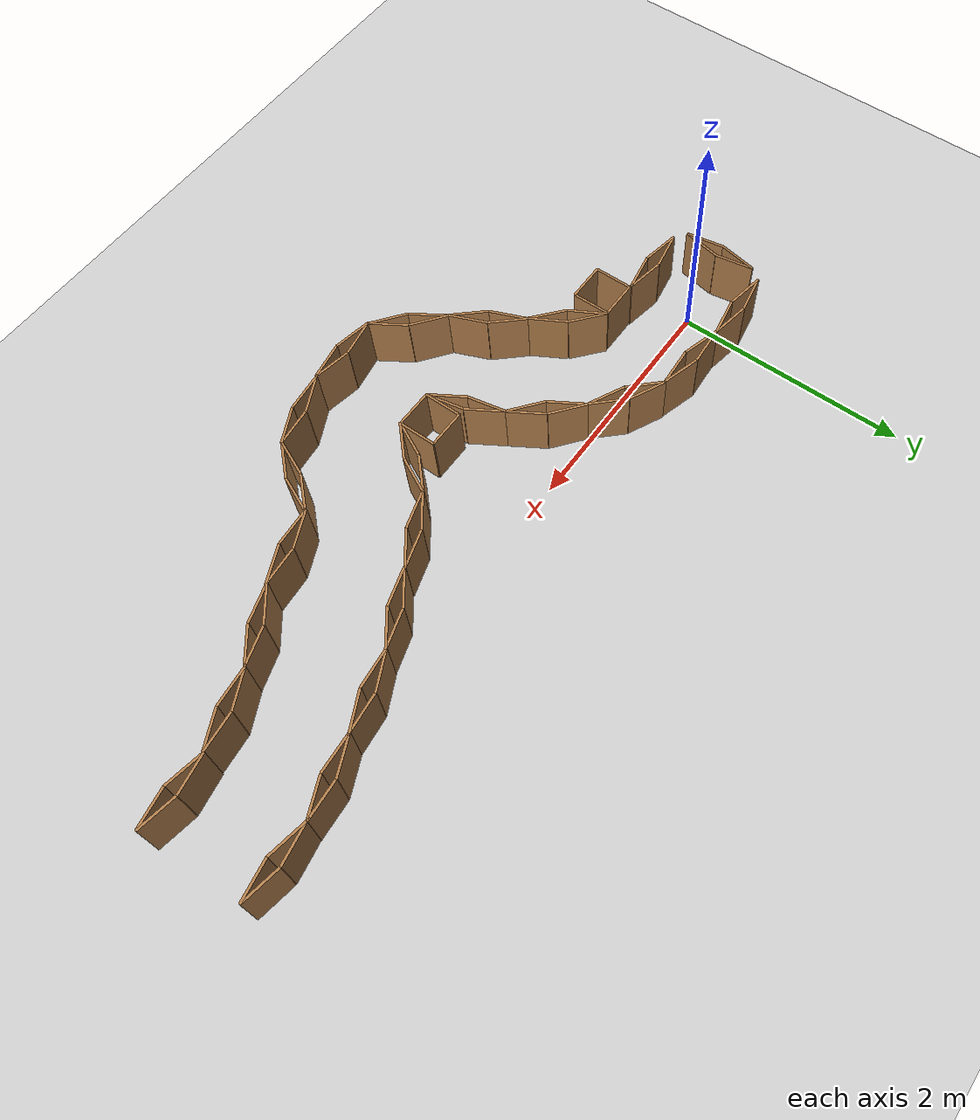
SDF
<sdf version="1.6">
 <world name="default">
  <model name="ground_plane">
   <static>1</static>
   <link name="link">
    <collision name="collision">
     <geometry><plane><normal>0 0 1</normal><size>100 100</size></plane></geometry>
     <surface>
      <contact><collide_bitmask>65535</collide_bitmask></contact>
      <friction><ode><mu>100</mu><mu2>50</mu2></ode></friction>
     </surface>
    </collision>
    <visual name="visual">
     <cast_shadows>0</cast_shadows>
     <geometry><plane><normal>0 0 1</normal><size>100 100</size></plane></geometry>
     <material>
      <script><uri>file://media/materials/scripts/gazebo.material</uri><name>Gazebo/Grey</name></script>
     </material>
    </visual>
   </link>
  </model>
  <light name="sun" type="directional">
   <pose>0 0 10 0 -0 0</pose>
   <diffuse>0.8 0.8 0.8 1</diffuse>
   <specular>0.2 0.2 0.2 1</specular>
   <attenuation>
    <range>1000</range>
    <constant>0.9</constant>
    <linear>0.01</linear>
    <quadratic>0.001</quadratic>
   </attenuation>
   <direction>-0.5 0.1 -0.9</direction>
  </light>
  <model name="folded_box">
   <pose>5.45079 0.30944 0 0 -0 0</pose>
   <static>1</static>
   <link name="box1">
    <pose>0.16 -0.028218 0.25 0 -0 0.174533</pose>
    <collision name="collision"><geometry><box><size>0.325 0.05 0.5</size></box></geometry></collision>
    <visual name="visual">
     <geometry><box><size>0.325 0.02 0.5</size></box></geometry>
     <material>
      <script><uri>file://media/materials/scripts/gazebo.material</uri><name>Gazebo/WoodPallet</name></script>
     </material>
    </visual>
   </link>
   <link name="box2">
    <pose>0.16 0.028218 0.25 0 0 -0.174533</pose>
    <collision name="collision"><geometry><box><size>0.325 0.05 0.5</size></box></geometry></collision>
    <visual name="visual">
     <geometry><box><size>0.325 0.02 0.5</size></box></geometry>
     <material>
      <script><uri>file://media/materials/scripts/gazebo.material</uri><name>Gazebo/WoodPallet</name></script>
     </material>
    </visual>
   </link>
   <link name="box3">
    <pose>-0.16 0.028218 0.25 0 -0 0.174533</pose>
    <collision name="collision"><geometry><box><size>0.325 0.05 0.5</size></box></geometry></collision>
    <visual name="visual">
     <geometry><box><size>0.325 0.02 0.5</size></box></geometry>
     <material>
      <script><uri>file://media/materials/scripts/gazebo.material</uri><name>Gazebo/WoodPallet</name></script>
     </material>
    </visual>
   </link>
   <link name="box4">
    <pose>-0.16 -0.028218 0.25 0 0 -0.174533</pose>
    <collision name="collision"><geometry><box><size>0.325 0.05 0.5</size></box></geometry></collision>
    <visual name="visual">
     <geometry><box><size>0.325 0.02 0.5</size></box></geometry>
     <material>
      <script><uri>file://media/materials/scripts/gazebo.material</uri><name>Gazebo/WoodPallet</name></script>
     </material>
    </visual>
   </link>
  </model>
  <gravity>0 0 -9.8</gravity>
  <magnetic_field>6e-06 2.3e-05 -4.2e-05</magnetic_field>
  <atmosphere type="adiabatic"/>
  <physics name="default_physics" default="0" type="ode">
   <max_step_size>0.001</max_step_size>
   <real_time_factor>1</real_time_factor>
   <real_time_update_rate>1000</real_time_update_rate>
  </physics>
  <scene><ambient>0.4 0.4 0.4 1</ambient><background>0.7 0.7 0.7 1</background><shadows>1</shadows></scene>
  <audio><device>default</device></audio>
  <spherical_coordinates>
   <surface_model>EARTH_WGS84</surface_model>
   <latitude_deg>0</latitude_deg>
   <longitude_deg>0</longitude_deg>
   <elevation>0</elevation>
   <heading_deg>0</heading_deg>
  </spherical_coordinates>
  <model name="folded_box_clone">
   <static>1</static>
   <link name="box1">
    <pose>0.16 -0.028218 0.25 0 -0 0.174533</pose>
    <collision name="collision"><geometry><box><size>0.325 0.05 0.5</size></box></geometry></collision>
    <visual name="visual">
     <geometry><box><size>0.325 0.02 0.5</size></box></geometry>
     <material>
      <script><uri>file://media/materials/scripts/gazebo.material</uri><name>Gazebo/WoodPallet</name></script>
     </material>
    </visual>
   </link>
   <link name="box2">
    <pose>0.16 0.028218 0.25 0 0 -0.174533</pose>
    <collision name="collision"><geometry><box><size>0.325 0.05 0.5</size></box></geometry></collision>
    <visual name="visual">
     <geometry><box><size>0.325 0.02 0.5</size></box></geometry>
     <material>
      <script><uri>file://media/materials/scripts/gazebo.material</uri><name>Gazebo/WoodPallet</name></script>
     </material>
    </visual>
   </link>
   <link name="box3">
    <pose>-0.16 0.028218 0.25 0 -0 0.174533</pose>
    <collision name="collision"><geometry><box><size>0.325 0.05 0.5</size></box></geometry></collision>
    <visual name="visual">
     <geometry><box><size>0.325 0.02 0.5</size></box></geometry>
     <material>
      <script><uri>file://media/materials/scripts/gazebo.material</uri><name>Gazebo/WoodPallet</name></script>
     </material>
    </visual>
   </link>
   <link name="box4">
    <pose>-0.16 -0.028218 0.25 0 0 -0.174533</pose>
    <collision name="collision"><geometry><box><size>0.325 0.05 0.5</size></box></geometry></collision>
    <visual name="visual">
     <geometry><box><size>0.325 0.02 0.5</size></box></geometry>
     <material>
      <script><uri>file://media/materials/scripts/gazebo.material</uri><name>Gazebo/WoodPallet</name></script>
     </material>
    </visual>
   </link>
   <pose>5.49332 -0.554141 0 0 -0 0</pose>
  </model>
  <model name="folded_box_clone_clone">
   <static>1</static>
   <link name="box1">
    <pose>0.16 -0.028218 0.25 0 -0 0.174533</pose>
    <collision name="collision"><geometry><box><size>0.325 0.05 0.5</size></box></geometry></collision>
    <visual name="visual">
     <geometry><box><size>0.325 0.02 0.5</size></box></geometry>
     <material>
      <script><uri>file://media/materials/scripts/gazebo.material</uri><name>Gazebo/WoodPallet</name></script>
     </material>
    </visual>
   </link>
   <link name="box2">
    <pose>0.16 0.028218 0.25 0 0 -0.174533</pose>
    <collision name="collision"><geometry><box><size>0.325 0.05 0.5</size></box></geometry></collision>
    <visual name="visual">
     <geometry><box><size>0.325 0.02 0.5</size></box></geometry>
     <material>
      <script><uri>file://media/materials/scripts/gazebo.material</uri><name>Gazebo/WoodPallet</name></script>
     </material>
    </visual>
   </link>
   <link name="box3">
    <pose>-0.16 0.028218 0.25 0 -0 0.174533</pose>
    <collision name="collision"><geometry><box><size>0.325 0.05 0.5</size></box></geometry></collision>
    <visual name="visual">
     <geometry><box><size>0.325 0.02 0.5</size></box></geometry>
     <material>
      <script><uri>file://media/materials/scripts/gazebo.material</uri><name>Gazebo/WoodPallet</name></script>
     </material>
    </visual>
   </link>
   <link name="box4">
    <pose>-0.16 -0.028218 0.25 0 0 -0.174533</pose>
    <collision name="collision"><geometry><box><size>0.325 0.05 0.5</size></box></geometry></collision>
    <visual name="visual">
     <geometry><box><size>0.325 0.02 0.5</size></box></geometry>
     <material>
      <script><uri>file://media/materials/scripts/gazebo.material</uri><name>Gazebo/WoodPallet</name></script>
     </material>
    </visual>
   </link>
   <pose>4.87332 -0.650379 0 0 -0 0.285681</pose>
  </model>
  <model name="folded_box_clone_clone_clone">
   <static>1</static>
   <link name="box1">
    <pose>0.16 -0.028218 0.25 0 -0 0.174533</pose>
    <collision name="collision"><geometry><box><size>0.325 0.05 0.5</size></box></geometry></collision>
    <visual name="visual">
     <geometry><box><size>0.325 0.02 0.5</size></box></geometry>
     <material>
      <script><uri>file://media/materials/scripts/gazebo.material</uri><name>Gazebo/WoodPallet</name></script>
     </material>
    </visual>
   </link>
   <link name="box2">
    <pose>0.16 0.028218 0.25 0 0 -0.174533</pose>
    <collision name="collision"><geometry><box><size>0.325 0.05 0.5</size></box></geometry></collision>
    <visual name="visual">
     <geometry><box><size>0.325 0.02 0.5</size></box></geometry>
     <material>
      <script><uri>file://media/materials/scripts/gazebo.material</uri><name>Gazebo/WoodPallet</name></script>
     </material>
    </visual>
   </link>
   <link name="box3">
    <pose>-0.16 0.028218 0.25 0 -0 0.174533</pose>
    <collision name="collision"><geometry><box><size>0.325 0.05 0.5</size></box></geometry></collision>
    <visual name="visual">
     <geometry><box><size>0.325 0.02 0.5</size></box></geometry>
     <material>
      <script><uri>file://media/materials/scripts/gazebo.material</uri><name>Gazebo/WoodPallet</name></script>
     </material>
    </visual>
   </link>
   <link name="box4">
    <pose>-0.16 -0.028218 0.25 0 0 -0.174533</pose>
    <collision name="collision"><geometry><box><size>0.325 0.05 0.5</size></box></geometry></collision>
    <visual name="visual">
     <geometry><box><size>0.325 0.02 0.5</size></box></geometry>
     <material>
      <script><uri>file://media/materials/scripts/gazebo.material</uri><name>Gazebo/WoodPallet</name></script>
     </material>
    </visual>
   </link>
   <pose>4.82198 0.232018 0 0 -0 0.250838</pose>
  </model>
  <model name="folded_box_clone_clone_clone_0">
   <static>1</static>
   <link name="box1">
    <pose>0.16 -0.028218 0.25 0 -0 0.174533</pose>
    <collision name="collision"><geometry><box><size>0.325 0.05 0.5</size></box></geometry></collision>
    <visual name="visual">
     <geometry><box><size>0.325 0.02 0.5</size></box></geometry>
     <material>
      <script><uri>file://media/materials/scripts/gazebo.material</uri><name>Gazebo/WoodPallet</name></script>
     </material>
    </visual>
   </link>
   <link name="box2">
    <pose>0.16 0.028218 0.25 0 0 -0.174533</pose>
    <collision name="collision"><geometry><box><size>0.325 0.05 0.5</size></box></geometry></collision>
    <visual name="visual">
     <geometry><box><size>0.325 0.02 0.5</size></box></geometry>
     <material>
      <script><uri>file://media/materials/scripts/gazebo.material</uri><name>Gazebo/WoodPallet</name></script>
     </material>
    </visual>
   </link>
   <link name="box3">
    <pose>-0.16 0.028218 0.25 0 -0 0.174533</pose>
    <collision name="collision"><geometry><box><size>0.325 0.05 0.5</size></box></geometry></collision>
    <visual name="visual">
     <geometry><box><size>0.325 0.02 0.5</size></box></geometry>
     <material>
      <script><uri>file://media/materials/scripts/gazebo.material</uri><name>Gazebo/WoodPallet</name></script>
     </material>
    </visual>
   </link>
   <link name="box4">
    <pose>-0.16 -0.028218 0.25 0 0 -0.174533</pose>
    <collision name="collision"><geometry><box><size>0.325 0.05 0.5</size></box></geometry></collision>
    <visual name="visual">
     <geometry><box><size>0.325 0.02 0.5</size></box></geometry>
     <material>
      <script><uri>file://media/materials/scripts/gazebo.material</uri><name>Gazebo/WoodPallet</name></script>
     </material>
    </visual>
   </link>
   <pose>4.28612 -0.892423 0 0 -0 0.486291</pose>
  </model>
  <model name="folded_box_clone_clone_clone_0_clone">
   <static>1</static>
   <link name="box1">
    <pose>0.16 -0.028218 0.25 0 -0 0.174533</pose>
    <collision name="collision"><geometry><box><size>0.325 0.05 0.5</size></box></geometry></collision>
    <visual name="visual">
     <geometry><box><size>0.325 0.02 0.5</size></box></geometry>
     <material>
      <script><uri>file://media/materials/scripts/gazebo.material</uri><name>Gazebo/WoodPallet</name></script>
     </material>
    </visual>
   </link>
   <link name="box2">
    <pose>0.16 0.028218 0.25 0 0 -0.174533</pose>
    <collision name="collision"><geometry><box><size>0.325 0.05 0.5</size></box></geometry></collision>
    <visual name="visual">
     <geometry><box><size>0.325 0.02 0.5</size></box></geometry>
     <material>
      <script><uri>file://media/materials/scripts/gazebo.material</uri><name>Gazebo/WoodPallet</name></script>
     </material>
    </visual>
   </link>
   <link name="box3">
    <pose>-0.16 0.028218 0.25 0 -0 0.174533</pose>
    <collision name="collision"><geometry><box><size>0.325 0.05 0.5</size></box></geometry></collision>
    <visual name="visual">
     <geometry><box><size>0.325 0.02 0.5</size></box></geometry>
     <material>
      <script><uri>file://media/materials/scripts/gazebo.material</uri><name>Gazebo/WoodPallet</name></script>
     </material>
    </visual>
   </link>
   <link name="box4">
    <pose>-0.16 -0.028218 0.25 0 0 -0.174533</pose>
    <collision name="collision"><geometry><box><size>0.325 0.05 0.5</size></box></geometry></collision>
    <visual name="visual">
     <geometry><box><size>0.325 0.02 0.5</size></box></geometry>
     <material>
      <script><uri>file://media/materials/scripts/gazebo.material</uri><name>Gazebo/WoodPallet</name></script>
     </material>
    </visual>
   </link>
   <pose>3.69958 -1.1258 0 0 -0 0.255467</pose>
  </model>
  <model name="folded_box_clone_clone_clone_0_clone_clone">
   <static>1</static>
   <link name="box1">
    <pose>0.16 -0.028218 0.25 0 -0 0.174533</pose>
    <collision name="collision"><geometry><box><size>0.325 0.05 0.5</size></box></geometry></collision>
    <visual name="visual">
     <geometry><box><size>0.325 0.02 0.5</size></box></geometry>
     <material>
      <script><uri>file://media/materials/scripts/gazebo.material</uri><name>Gazebo/WoodPallet</name></script>
     </material>
    </visual>
   </link>
   <link name="box2">
    <pose>0.16 0.028218 0.25 0 0 -0.174533</pose>
    <collision name="collision"><geometry><box><size>0.325 0.05 0.5</size></box></geometry></collision>
    <visual name="visual">
     <geometry><box><size>0.325 0.02 0.5</size></box></geometry>
     <material>
      <script><uri>file://media/materials/scripts/gazebo.material</uri><name>Gazebo/WoodPallet</name></script>
     </material>
    </visual>
   </link>
   <link name="box3">
    <pose>-0.16 0.028218 0.25 0 -0 0.174533</pose>
    <collision name="collision"><geometry><box><size>0.325 0.05 0.5</size></box></geometry></collision>
    <visual name="visual">
     <geometry><box><size>0.325 0.02 0.5</size></box></geometry>
     <material>
      <script><uri>file://media/materials/scripts/gazebo.material</uri><name>Gazebo/WoodPallet</name></script>
     </material>
    </visual>
   </link>
   <link name="box4">
    <pose>-0.16 -0.028218 0.25 0 0 -0.174533</pose>
    <collision name="collision"><geometry><box><size>0.325 0.05 0.5</size></box></geometry></collision>
    <visual name="visual">
     <geometry><box><size>0.325 0.02 0.5</size></box></geometry>
     <material>
      <script><uri>file://media/materials/scripts/gazebo.material</uri><name>Gazebo/WoodPallet</name></script>
     </material>
    </visual>
   </link>
   <pose>3.22629 -1.47177 0 0 -0 0.995873</pose>
  </model>
  <model name="folded_box_clone_clone_clone_clone">
   <static>1</static>
   <link name="box1">
    <pose>0.16 -0.028218 0.25 0 -0 0.174533</pose>
    <collision name="collision"><geometry><box><size>0.325 0.05 0.5</size></box></geometry></collision>
    <visual name="visual">
     <geometry><box><size>0.325 0.02 0.5</size></box></geometry>
     <material>
      <script><uri>file://media/materials/scripts/gazebo.material</uri><name>Gazebo/WoodPallet</name></script>
     </material>
    </visual>
   </link>
   <link name="box2">
    <pose>0.16 0.028218 0.25 0 0 -0.174533</pose>
    <collision name="collision"><geometry><box><size>0.325 0.05 0.5</size></box></geometry></collision>
    <visual name="visual">
     <geometry><box><size>0.325 0.02 0.5</size></box></geometry>
     <material>
      <script><uri>file://media/materials/scripts/gazebo.material</uri><name>Gazebo/WoodPallet</name></script>
     </material>
    </visual>
   </link>
   <link name="box3">
    <pose>-0.16 0.028218 0.25 0 -0 0.174533</pose>
    <collision name="collision"><geometry><box><size>0.325 0.05 0.5</size></box></geometry></collision>
    <visual name="visual">
     <geometry><box><size>0.325 0.02 0.5</size></box></geometry>
     <material>
      <script><uri>file://media/materials/scripts/gazebo.material</uri><name>Gazebo/WoodPallet</name></script>
     </material>
    </visual>
   </link>
   <link name="box4">
    <pose>-0.16 -0.028218 0.25 0 0 -0.174533</pose>
    <collision name="collision"><geometry><box><size>0.325 0.05 0.5</size></box></geometry></collision>
    <visual name="visual">
     <geometry><box><size>0.325 0.02 0.5</size></box></geometry>
     <material>
      <script><uri>file://media/materials/scripts/gazebo.material</uri><name>Gazebo/WoodPallet</name></script>
     </material>
    </visual>
   </link>
   <pose>4.21063 0.063018 0 0 -0 0.285681</pose>
  </model>
  <model name="folded_box_clone_clone_clone_clone_clone">
   <static>1</static>
   <link name="box1">
    <pose>0.16 -0.028218 0.25 0 -0 0.174533</pose>
    <collision name="collision"><geometry><box><size>0.325 0.05 0.5</size></box></geometry></collision>
    <visual name="visual">
     <geometry><box><size>0.325 0.02 0.5</size></box></geometry>
     <material>
      <script><uri>file://media/materials/scripts/gazebo.material</uri><name>Gazebo/WoodPallet</name></script>
     </material>
    </visual>
   </link>
   <link name="box2">
    <pose>0.16 0.028218 0.25 0 0 -0.174533</pose>
    <collision name="collision"><geometry><box><size>0.325 0.05 0.5</size></box></geometry></collision>
    <visual name="visual">
     <geometry><box><size>0.325 0.02 0.5</size></box></geometry>
     <material>
      <script><uri>file://media/materials/scripts/gazebo.material</uri><name>Gazebo/WoodPallet</name></script>
     </material>
    </visual>
   </link>
   <link name="box3">
    <pose>-0.16 0.028218 0.25 0 -0 0.174533</pose>
    <collision name="collision"><geometry><box><size>0.325 0.05 0.5</size></box></geometry></collision>
    <visual name="visual">
     <geometry><box><size>0.325 0.02 0.5</size></box></geometry>
     <material>
      <script><uri>file://media/materials/scripts/gazebo.material</uri><name>Gazebo/WoodPallet</name></script>
     </material>
    </visual>
   </link>
   <link name="box4">
    <pose>-0.16 -0.028218 0.25 0 0 -0.174533</pose>
    <collision name="collision"><geometry><box><size>0.325 0.05 0.5</size></box></geometry></collision>
    <visual name="visual">
     <geometry><box><size>0.325 0.02 0.5</size></box></geometry>
     <material>
      <script><uri>file://media/materials/scripts/gazebo.material</uri><name>Gazebo/WoodPallet</name></script>
     </material>
    </visual>
   </link>
   <pose>3.62126 -0.174426 0 0 -0 0.470834</pose>
  </model>
  <model name="folded_box_clone_clone_clone_clone_clone_clone">
   <static>1</static>
   <link name="box1">
    <pose>0.16 -0.028218 0.25 0 -0 0.174533</pose>
    <collision name="collision"><geometry><box><size>0.325 0.05 0.5</size></box></geometry></collision>
    <visual name="visual">
     <geometry><box><size>0.325 0.02 0.5</size></box></geometry>
     <material>
      <script><uri>file://media/materials/scripts/gazebo.material</uri><name>Gazebo/WoodPallet</name></script>
     </material>
    </visual>
   </link>
   <link name="box2">
    <pose>0.16 0.028218 0.25 0 0 -0.174533</pose>
    <collision name="collision"><geometry><box><size>0.325 0.05 0.5</size></box></geometry></collision>
    <visual name="visual">
     <geometry><box><size>0.325 0.02 0.5</size></box></geometry>
     <material>
      <script><uri>file://media/materials/scripts/gazebo.material</uri><name>Gazebo/WoodPallet</name></script>
     </material>
    </visual>
   </link>
   <link name="box3">
    <pose>-0.16 0.028218 0.25 0 -0 0.174533</pose>
    <collision name="collision"><geometry><box><size>0.325 0.05 0.5</size></box></geometry></collision>
    <visual name="visual">
     <geometry><box><size>0.325 0.02 0.5</size></box></geometry>
     <material>
      <script><uri>file://media/materials/scripts/gazebo.material</uri><name>Gazebo/WoodPallet</name></script>
     </material>
    </visual>
   </link>
   <link name="box4">
    <pose>-0.16 -0.028218 0.25 0 0 -0.174533</pose>
    <collision name="collision"><geometry><box><size>0.325 0.05 0.5</size></box></geometry></collision>
    <visual name="visual">
     <geometry><box><size>0.325 0.02 0.5</size></box></geometry>
     <material>
      <script><uri>file://media/materials/scripts/gazebo.material</uri><name>Gazebo/WoodPallet</name></script>
     </material>
    </visual>
   </link>
   <pose>3.05639 -0.456316 0 0 -0 0.470834</pose>
  </model>
  <model name="folded_box_clone_clone_clone_clone_clone_clone_clone">
   <static>1</static>
   <link name="box1">
    <pose>0.16 -0.028218 0.25 0 -0 0.174533</pose>
    <collision name="collision"><geometry><box><size>0.325 0.05 0.5</size></box></geometry></collision>
    <visual name="visual">
     <geometry><box><size>0.325 0.02 0.5</size></box></geometry>
     <material>
      <script><uri>file://media/materials/scripts/gazebo.material</uri><name>Gazebo/WoodPallet</name></script>
     </material>
    </visual>
   </link>
   <link name="box2">
    <pose>0.16 0.028218 0.25 0 0 -0.174533</pose>
    <collision name="collision"><geometry><box><size>0.325 0.05 0.5</size></box></geometry></collision>
    <visual name="visual">
     <geometry><box><size>0.325 0.02 0.5</size></box></geometry>
     <material>
      <script><uri>file://media/materials/scripts/gazebo.material</uri><name>Gazebo/WoodPallet</name></script>
     </material>
    </visual>
   </link>
   <link name="box3">
    <pose>-0.16 0.028218 0.25 0 -0 0.174533</pose>
    <collision name="collision"><geometry><box><size>0.325 0.05 0.5</size></box></geometry></collision>
    <visual name="visual">
     <geometry><box><size>0.325 0.02 0.5</size></box></geometry>
     <material>
      <script><uri>file://media/materials/scripts/gazebo.material</uri><name>Gazebo/WoodPallet</name></script>
     </material>
    </visual>
   </link>
   <link name="box4">
    <pose>-0.16 -0.028218 0.25 0 0 -0.174533</pose>
    <collision name="collision"><geometry><box><size>0.325 0.05 0.5</size></box></geometry></collision>
    <visual name="visual">
     <geometry><box><size>0.325 0.02 0.5</size></box></geometry>
     <material>
      <script><uri>file://media/materials/scripts/gazebo.material</uri><name>Gazebo/WoodPallet</name></script>
     </material>
    </visual>
   </link>
   <pose>2.58689 -0.855627 0 0 -0 0.946587</pose>
  </model>
  <model name="folded_box_clone_clone_clone_0_clone_clone_clone">
   <static>1</static>
   <link name="box1">
    <pose>0.16 -0.028218 0.25 0 -0 0.174533</pose>
    <collision name="collision"><geometry><box><size>0.325 0.05 0.5</size></box></geometry></collision>
    <visual name="visual">
     <geometry><box><size>0.325 0.02 0.5</size></box></geometry>
     <material>
      <script><uri>file://media/materials/scripts/gazebo.material</uri><name>Gazebo/WoodPallet</name></script>
     </material>
    </visual>
   </link>
   <link name="box2">
    <pose>0.16 0.028218 0.25 0 0 -0.174533</pose>
    <collision name="collision"><geometry><box><size>0.325 0.05 0.5</size></box></geometry></collision>
    <visual name="visual">
     <geometry><box><size>0.325 0.02 0.5</size></box></geometry>
     <material>
      <script><uri>file://media/materials/scripts/gazebo.material</uri><name>Gazebo/WoodPallet</name></script>
     </material>
    </visual>
   </link>
   <link name="box3">
    <pose>-0.16 0.028218 0.25 0 -0 0.174533</pose>
    <collision name="collision"><geometry><box><size>0.325 0.05 0.5</size></box></geometry></collision>
    <visual name="visual">
     <geometry><box><size>0.325 0.02 0.5</size></box></geometry>
     <material>
      <script><uri>file://media/materials/scripts/gazebo.material</uri><name>Gazebo/WoodPallet</name></script>
     </material>
    </visual>
   </link>
   <link name="box4">
    <pose>-0.16 -0.028218 0.25 0 0 -0.174533</pose>
    <collision name="collision"><geometry><box><size>0.325 0.05 0.5</size></box></geometry></collision>
    <visual name="visual">
     <geometry><box><size>0.325 0.02 0.5</size></box></geometry>
     <material>
      <script><uri>file://media/materials/scripts/gazebo.material</uri><name>Gazebo/WoodPallet</name></script>
     </material>
    </visual>
   </link>
   <pose>2.75282 -1.82725 0 0 -0 0.284525</pose>
  </model>
  <model name="folded_box_2">
   <pose>2.24175 -0.948723 0 0 -0 0</pose>
   <static>1</static>
   <link name="box1">
    <pose>0 0.16 0.25 0 -0 0</pose>
    <collision name="collision"><geometry><box><size>0.325 0.05 0.5</size></box></geometry></collision>
    <visual name="visual">
     <geometry><box><size>0.325 0.02 0.5</size></box></geometry>
     <material>
      <script><uri>file://media/materials/scripts/gazebo.material</uri><name>Gazebo/WoodPallet</name></script>
     </material>
    </visual>
   </link>
   <link name="box2">
    <pose>0 -0.16 0.25 0 -0 0</pose>
    <collision name="collision"><geometry><box><size>0.325 0.05 0.5</size></box></geometry></collision>
    <visual name="visual">
     <geometry><box><size>0.325 0.02 0.5</size></box></geometry>
     <material>
      <script><uri>file://media/materials/scripts/gazebo.material</uri><name>Gazebo/WoodPallet</name></script>
     </material>
    </visual>
   </link>
   <link name="box3">
    <pose>0.16 0 0.25 0 -0 1.5708</pose>
    <collision name="collision"><geometry><box><size>0.325 0.05 0.5</size></box></geometry></collision>
    <visual name="visual">
     <geometry><box><size>0.325 0.02 0.5</size></box></geometry>
     <material>
      <script><uri>file://media/materials/scripts/gazebo.material</uri><name>Gazebo/WoodPallet</name></script>
     </material>
    </visual>
   </link>
   <link name="box4">
    <pose>-0.16 0 0.25 0 -0 1.5708</pose>
    <collision name="collision"><geometry><box><size>0.325 0.05 0.5</size></box></geometry></collision>
    <visual name="visual">
     <geometry><box><size>0.325 0.02 0.5</size></box></geometry>
     <material>
      <script><uri>file://media/materials/scripts/gazebo.material</uri><name>Gazebo/WoodPallet</name></script>
     </material>
    </visual>
   </link>
  </model>
  <model name="folded_box_clone_clone_clone_0_clone_clone_clone_clone">
   <static>1</static>
   <link name="box1">
    <pose>0.16 -0.028218 0.25 0 -0 0.174533</pose>
    <collision name="collision"><geometry><box><size>0.325 0.05 0.5</size></box></geometry></collision>
    <visual name="visual">
     <geometry><box><size>0.325 0.02 0.5</size></box></geometry>
     <material>
      <script><uri>file://media/materials/scripts/gazebo.material</uri><name>Gazebo/WoodPallet</name></script>
     </material>
    </visual>
   </link>
   <link name="box2">
    <pose>0.16 0.028218 0.25 0 0 -0.174533</pose>
    <collision name="collision"><geometry><box><size>0.325 0.05 0.5</size></box></geometry></collision>
    <visual name="visual">
     <geometry><box><size>0.325 0.02 0.5</size></box></geometry>
     <material>
      <script><uri>file://media/materials/scripts/gazebo.material</uri><name>Gazebo/WoodPallet</name></script>
     </material>
    </visual>
   </link>
   <link name="box3">
    <pose>-0.16 0.028218 0.25 0 -0 0.174533</pose>
    <collision name="collision"><geometry><box><size>0.325 0.05 0.5</size></box></geometry></collision>
    <visual name="visual">
     <geometry><box><size>0.325 0.02 0.5</size></box></geometry>
     <material>
      <script><uri>file://media/materials/scripts/gazebo.material</uri><name>Gazebo/WoodPallet</name></script>
     </material>
    </visual>
   </link>
   <link name="box4">
    <pose>-0.16 -0.028218 0.25 0 0 -0.174533</pose>
    <collision name="collision"><geometry><box><size>0.325 0.05 0.5</size></box></geometry></collision>
    <visual name="visual">
     <geometry><box><size>0.325 0.02 0.5</size></box></geometry>
     <material>
      <script><uri>file://media/materials/scripts/gazebo.material</uri><name>Gazebo/WoodPallet</name></script>
     </material>
    </visual>
   </link>
   <pose>2.12703 -1.92144 0 0 0 -0.006556</pose>
  </model>
  <model name="folded_box_clone_clone_clone_0_clone_clone_clone_clone_clone">
   <static>1</static>
   <link name="box1">
    <pose>0.16 -0.028218 0.25 0 -0 0.174533</pose>
    <collision name="collision"><geometry><box><size>0.325 0.05 0.5</size></box></geometry></collision>
    <visual name="visual">
     <geometry><box><size>0.325 0.02 0.5</size></box></geometry>
     <material>
      <script><uri>file://media/materials/scripts/gazebo.material</uri><name>Gazebo/WoodPallet</name></script>
     </material>
    </visual>
   </link>
   <link name="box2">
    <pose>0.16 0.028218 0.25 0 0 -0.174533</pose>
    <collision name="collision"><geometry><box><size>0.325 0.05 0.5</size></box></geometry></collision>
    <visual name="visual">
     <geometry><box><size>0.325 0.02 0.5</size></box></geometry>
     <material>
      <script><uri>file://media/materials/scripts/gazebo.material</uri><name>Gazebo/WoodPallet</name></script>
     </material>
    </visual>
   </link>
   <link name="box3">
    <pose>-0.16 0.028218 0.25 0 -0 0.174533</pose>
    <collision name="collision"><geometry><box><size>0.325 0.05 0.5</size></box></geometry></collision>
    <visual name="visual">
     <geometry><box><size>0.325 0.02 0.5</size></box></geometry>
     <material>
      <script><uri>file://media/materials/scripts/gazebo.material</uri><name>Gazebo/WoodPallet</name></script>
     </material>
    </visual>
   </link>
   <link name="box4">
    <pose>-0.16 -0.028218 0.25 0 0 -0.174533</pose>
    <collision name="collision"><geometry><box><size>0.325 0.05 0.5</size></box></geometry></collision>
    <visual name="visual">
     <geometry><box><size>0.325 0.02 0.5</size></box></geometry>
     <material>
      <script><uri>file://media/materials/scripts/gazebo.material</uri><name>Gazebo/WoodPallet</name></script>
     </material>
    </visual>
   </link>
   <pose>1.59835 -1.6768 0 0 0 -0.836745</pose>
  </model>
  <model name="folded_box_clone_clone_clone_clone_clone_clone_clone_clone">
   <static>1</static>
   <link name="box1">
    <pose>0.16 -0.028218 0.25 0 -0 0.174533</pose>
    <collision name="collision"><geometry><box><size>0.325 0.05 0.5</size></box></geometry></collision>
    <visual name="visual">
     <geometry><box><size>0.325 0.02 0.5</size></box></geometry>
     <material>
      <script><uri>file://media/materials/scripts/gazebo.material</uri><name>Gazebo/WoodPallet</name></script>
     </material>
    </visual>
   </link>
   <link name="box2">
    <pose>0.16 0.028218 0.25 0 0 -0.174533</pose>
    <collision name="collision"><geometry><box><size>0.325 0.05 0.5</size></box></geometry></collision>
    <visual name="visual">
     <geometry><box><size>0.325 0.02 0.5</size></box></geometry>
     <material>
      <script><uri>file://media/materials/scripts/gazebo.material</uri><name>Gazebo/WoodPallet</name></script>
     </material>
    </visual>
   </link>
   <link name="box3">
    <pose>-0.16 0.028218 0.25 0 -0 0.174533</pose>
    <collision name="collision"><geometry><box><size>0.325 0.05 0.5</size></box></geometry></collision>
    <visual name="visual">
     <geometry><box><size>0.325 0.02 0.5</size></box></geometry>
     <material>
      <script><uri>file://media/materials/scripts/gazebo.material</uri><name>Gazebo/WoodPallet</name></script>
     </material>
    </visual>
   </link>
   <link name="box4">
    <pose>-0.16 -0.028218 0.25 0 0 -0.174533</pose>
    <collision name="collision"><geometry><box><size>0.325 0.05 0.5</size></box></geometry></collision>
    <visual name="visual">
     <geometry><box><size>0.325 0.02 0.5</size></box></geometry>
     <material>
      <script><uri>file://media/materials/scripts/gazebo.material</uri><name>Gazebo/WoodPallet</name></script>
     </material>
    </visual>
   </link>
   <pose>1.96803 -0.815349 0 0 -0 1.93858</pose>
  </model>
  <model name="folded_box_clone_clone_clone_0_clone_clone_clone_clone_clone_clone">
   <static>1</static>
   <link name="box1">
    <pose>0.16 -0.028218 0.25 0 -0 0.174533</pose>
    <collision name="collision"><geometry><box><size>0.325 0.05 0.5</size></box></geometry></collision>
    <visual name="visual">
     <geometry><box><size>0.325 0.02 0.5</size></box></geometry>
     <material>
      <script><uri>file://media/materials/scripts/gazebo.material</uri><name>Gazebo/WoodPallet</name></script>
     </material>
    </visual>
   </link>
   <link name="box2">
    <pose>0.16 0.028218 0.25 0 0 -0.174533</pose>
    <collision name="collision"><geometry><box><size>0.325 0.05 0.5</size></box></geometry></collision>
    <visual name="visual">
     <geometry><box><size>0.325 0.02 0.5</size></box></geometry>
     <material>
      <script><uri>file://media/materials/scripts/gazebo.material</uri><name>Gazebo/WoodPallet</name></script>
     </material>
    </visual>
   </link>
   <link name="box3">
    <pose>-0.16 0.028218 0.25 0 -0 0.174533</pose>
    <collision name="collision"><geometry><box><size>0.325 0.05 0.5</size></box></geometry></collision>
    <visual name="visual">
     <geometry><box><size>0.325 0.02 0.5</size></box></geometry>
     <material>
      <script><uri>file://media/materials/scripts/gazebo.material</uri><name>Gazebo/WoodPallet</name></script>
     </material>
    </visual>
   </link>
   <link name="box4">
    <pose>-0.16 -0.028218 0.25 0 0 -0.174533</pose>
    <collision name="collision"><geometry><box><size>0.325 0.05 0.5</size></box></geometry></collision>
    <visual name="visual">
     <geometry><box><size>0.325 0.02 0.5</size></box></geometry>
     <material>
      <script><uri>file://media/materials/scripts/gazebo.material</uri><name>Gazebo/WoodPallet</name></script>
     </material>
    </visual>
   </link>
   <pose>1.20983 -1.16753 0 0 0 -1.0126</pose>
  </model>
  <model name="folded_box_clone_clone_clone_0_clone_clone_clone_clone_clone_clone_clone">
   <static>1</static>
   <link name="box1">
    <pose>0.16 -0.028218 0.25 0 -0 0.174533</pose>
    <collision name="collision"><geometry><box><size>0.325 0.05 0.5</size></box></geometry></collision>
    <visual name="visual">
     <geometry><box><size>0.325 0.02 0.5</size></box></geometry>
     <material>
      <script><uri>file://media/materials/scripts/gazebo.material</uri><name>Gazebo/WoodPallet</name></script>
     </material>
    </visual>
   </link>
   <link name="box2">
    <pose>0.16 0.028218 0.25 0 0 -0.174533</pose>
    <collision name="collision"><geometry><box><size>0.325 0.05 0.5</size></box></geometry></collision>
    <visual name="visual">
     <geometry><box><size>0.325 0.02 0.5</size></box></geometry>
     <material>
      <script><uri>file://media/materials/scripts/gazebo.material</uri><name>Gazebo/WoodPallet</name></script>
     </material>
    </visual>
   </link>
   <link name="box3">
    <pose>-0.16 0.028218 0.25 0 -0 0.174533</pose>
    <collision name="collision"><geometry><box><size>0.325 0.05 0.5</size></box></geometry></collision>
    <visual name="visual">
     <geometry><box><size>0.325 0.02 0.5</size></box></geometry>
     <material>
      <script><uri>file://media/materials/scripts/gazebo.material</uri><name>Gazebo/WoodPallet</name></script>
     </material>
    </visual>
   </link>
   <link name="box4">
    <pose>-0.16 -0.028218 0.25 0 0 -0.174533</pose>
    <collision name="collision"><geometry><box><size>0.325 0.05 0.5</size></box></geometry></collision>
    <visual name="visual">
     <geometry><box><size>0.325 0.02 0.5</size></box></geometry>
     <material>
      <script><uri>file://media/materials/scripts/gazebo.material</uri><name>Gazebo/WoodPallet</name></script>
     </material>
    </visual>
   </link>
   <pose>0.835848 -0.6496 0 0 0 -0.88994</pose>
  </model>
  <model name="folded_box_clone_clone_clone_clone_clone_clone_clone_clone_clone">
   <static>1</static>
   <link name="box1">
    <pose>0.16 -0.028218 0.25 0 -0 0.174533</pose>
    <collision name="collision"><geometry><box><size>0.325 0.05 0.5</size></box></geometry></collision>
    <visual name="visual">
     <geometry><box><size>0.325 0.02 0.5</size></box></geometry>
     <material>
      <script><uri>file://media/materials/scripts/gazebo.material</uri><name>Gazebo/WoodPallet</name></script>
     </material>
    </visual>
   </link>
   <link name="box2">
    <pose>0.16 0.028218 0.25 0 0 -0.174533</pose>
    <collision name="collision"><geometry><box><size>0.325 0.05 0.5</size></box></geometry></collision>
    <visual name="visual">
     <geometry><box><size>0.325 0.02 0.5</size></box></geometry>
     <material>
      <script><uri>file://media/materials/scripts/gazebo.material</uri><name>Gazebo/WoodPallet</name></script>
     </material>
    </visual>
   </link>
   <link name="box3">
    <pose>-0.16 0.028218 0.25 0 -0 0.174533</pose>
    <collision name="collision"><geometry><box><size>0.325 0.05 0.5</size></box></geometry></collision>
    <visual name="visual">
     <geometry><box><size>0.325 0.02 0.5</size></box></geometry>
     <material>
      <script><uri>file://media/materials/scripts/gazebo.material</uri><name>Gazebo/WoodPallet</name></script>
     </material>
    </visual>
   </link>
   <link name="box4">
    <pose>-0.16 -0.028218 0.25 0 0 -0.174533</pose>
    <collision name="collision"><geometry><box><size>0.325 0.05 0.5</size></box></geometry></collision>
    <visual name="visual">
     <geometry><box><size>0.325 0.02 0.5</size></box></geometry>
     <material>
      <script><uri>file://media/materials/scripts/gazebo.material</uri><name>Gazebo/WoodPallet</name></script>
     </material>
    </visual>
   </link>
   <pose>1.6449 -0.2761 0 0 -0 2.28459</pose>
  </model>
  <model name="folded_box_2_clone">
   <pose>0.466314 -0.564093 0 0 -0 0</pose>
   <static>1</static>
   <link name="box1">
    <pose>0 0.16 0.25 0 -0 0</pose>
    <collision name="collision"><geometry><box><size>0.325 0.05 0.5</size></box></geometry></collision>
    <visual name="visual">
     <geometry><box><size>0.325 0.02 0.5</size></box></geometry>
     <material>
      <script><uri>file://media/materials/scripts/gazebo.material</uri><name>Gazebo/WoodPallet</name></script>
     </material>
    </visual>
   </link>
   <link name="box2">
    <pose>0 -0.16 0.25 0 -0 0</pose>
    <collision name="collision"><geometry><box><size>0.325 0.05 0.5</size></box></geometry></collision>
    <visual name="visual">
     <geometry><box><size>0.325 0.02 0.5</size></box></geometry>
     <material>
      <script><uri>file://media/materials/scripts/gazebo.material</uri><name>Gazebo/WoodPallet</name></script>
     </material>
    </visual>
   </link>
   <link name="box3">
    <pose>0.16 0 0.25 0 -0 1.5708</pose>
    <collision name="collision"><geometry><box><size>0.325 0.05 0.5</size></box></geometry></collision>
    <visual name="visual">
     <geometry><box><size>0.325 0.02 0.5</size></box></geometry>
     <material>
      <script><uri>file://media/materials/scripts/gazebo.material</uri><name>Gazebo/WoodPallet</name></script>
     </material>
    </visual>
   </link>
   <link name="box4">
    <pose>-0.16 0 0.25 0 -0 1.5708</pose>
    <collision name="collision"><geometry><box><size>0.325 0.05 0.5</size></box></geometry></collision>
    <visual name="visual">
     <geometry><box><size>0.325 0.02 0.5</size></box></geometry>
     <material>
      <script><uri>file://media/materials/scripts/gazebo.material</uri><name>Gazebo/WoodPallet</name></script>
     </material>
    </visual>
   </link>
  </model>
  <model name="folded_box_clone_clone_clone_clone_clone_clone_clone_clone_clone_clone">
   <static>1</static>
   <link name="box1">
    <pose>0.16 -0.028218 0.25 0 -0 0.174533</pose>
    <collision name="collision"><geometry><box><size>0.325 0.05 0.5</size></box></geometry></collision>
    <visual name="visual">
     <geometry><box><size>0.325 0.02 0.5</size></box></geometry>
     <material>
      <script><uri>file://media/materials/scripts/gazebo.material</uri><name>Gazebo/WoodPallet</name></script>
     </material>
    </visual>
   </link>
   <link name="box2">
    <pose>0.16 0.028218 0.25 0 0 -0.174533</pose>
    <collision name="collision"><geometry><box><size>0.325 0.05 0.5</size></box></geometry></collision>
    <visual name="visual">
     <geometry><box><size>0.325 0.02 0.5</size></box></geometry>
     <material>
      <script><uri>file://media/materials/scripts/gazebo.material</uri><name>Gazebo/WoodPallet</name></script>
     </material>
    </visual>
   </link>
   <link name="box3">
    <pose>-0.16 0.028218 0.25 0 -0 0.174533</pose>
    <collision name="collision"><geometry><box><size>0.325 0.05 0.5</size></box></geometry></collision>
    <visual name="visual">
     <geometry><box><size>0.325 0.02 0.5</size></box></geometry>
     <material>
      <script><uri>file://media/materials/scripts/gazebo.material</uri><name>Gazebo/WoodPallet</name></script>
     </material>
    </visual>
   </link>
   <link name="box4">
    <pose>-0.16 -0.028218 0.25 0 0 -0.174533</pose>
    <collision name="collision"><geometry><box><size>0.325 0.05 0.5</size></box></geometry></collision>
    <visual name="visual">
     <geometry><box><size>0.325 0.02 0.5</size></box></geometry>
     <material>
      <script><uri>file://media/materials/scripts/gazebo.material</uri><name>Gazebo/WoodPallet</name></script>
     </material>
    </visual>
   </link>
   <pose>1.17587 0.15477 0 0 -0 2.50707</pose>
  </model>
  <model name="folded_box_clone_clone_clone_clone_clone_clone_clone_clone_clone_clone_clone">
   <static>1</static>
   <link name="box1">
    <pose>0.16 -0.028218 0.25 0 -0 0.174533</pose>
    <collision name="collision"><geometry><box><size>0.325 0.05 0.5</size></box></geometry></collision>
    <visual name="visual">
     <geometry><box><size>0.325 0.02 0.5</size></box></geometry>
     <material>
      <script><uri>file://media/materials/scripts/gazebo.material</uri><name>Gazebo/WoodPallet</name></script>
     </material>
    </visual>
   </link>
   <link name="box2">
    <pose>0.16 0.028218 0.25 0 0 -0.174533</pose>
    <collision name="collision"><geometry><box><size>0.325 0.05 0.5</size></box></geometry></collision>
    <visual name="visual">
     <geometry><box><size>0.325 0.02 0.5</size></box></geometry>
     <material>
      <script><uri>file://media/materials/scripts/gazebo.material</uri><name>Gazebo/WoodPallet</name></script>
     </material>
    </visual>
   </link>
   <link name="box3">
    <pose>-0.16 0.028218 0.25 0 -0 0.174533</pose>
    <collision name="collision"><geometry><box><size>0.325 0.05 0.5</size></box></geometry></collision>
    <visual name="visual">
     <geometry><box><size>0.325 0.02 0.5</size></box></geometry>
     <material>
      <script><uri>file://media/materials/scripts/gazebo.material</uri><name>Gazebo/WoodPallet</name></script>
     </material>
    </visual>
   </link>
   <link name="box4">
    <pose>-0.16 -0.028218 0.25 0 0 -0.174533</pose>
    <collision name="collision"><geometry><box><size>0.325 0.05 0.5</size></box></geometry></collision>
    <visual name="visual">
     <geometry><box><size>0.325 0.02 0.5</size></box></geometry>
     <material>
      <script><uri>file://media/materials/scripts/gazebo.material</uri><name>Gazebo/WoodPallet</name></script>
     </material>
    </visual>
   </link>
   <pose>0.596851 0.375839 0 0 -0 3.02831</pose>
  </model>
  <model name="folded_box_clone_clone_clone_clone_clone_clone_clone_clone_clone_clone_clone_clone">
   <static>1</static>
   <link name="box1">
    <pose>0.16 -0.028218 0.25 0 -0 0.174533</pose>
    <collision name="collision"><geometry><box><size>0.325 0.05 0.5</size></box></geometry></collision>
    <visual name="visual">
     <geometry><box><size>0.325 0.02 0.5</size></box></geometry>
     <material>
      <script><uri>file://media/materials/scripts/gazebo.material</uri><name>Gazebo/WoodPallet</name></script>
     </material>
    </visual>
   </link>
   <link name="box2">
    <pose>0.16 0.028218 0.25 0 0 -0.174533</pose>
    <collision name="collision"><geometry><box><size>0.325 0.05 0.5</size></box></geometry></collision>
    <visual name="visual">
     <geometry><box><size>0.325 0.02 0.5</size></box></geometry>
     <material>
      <script><uri>file://media/materials/scripts/gazebo.material</uri><name>Gazebo/WoodPallet</name></script>
     </material>
    </visual>
   </link>
   <link name="box3">
    <pose>-0.16 0.028218 0.25 0 -0 0.174533</pose>
    <collision name="collision"><geometry><box><size>0.325 0.05 0.5</size></box></geometry></collision>
    <visual name="visual">
     <geometry><box><size>0.325 0.02 0.5</size></box></geometry>
     <material>
      <script><uri>file://media/materials/scripts/gazebo.material</uri><name>Gazebo/WoodPallet</name></script>
     </material>
    </visual>
   </link>
   <link name="box4">
    <pose>-0.16 -0.028218 0.25 0 0 -0.174533</pose>
    <collision name="collision"><geometry><box><size>0.325 0.05 0.5</size></box></geometry></collision>
    <visual name="visual">
     <geometry><box><size>0.325 0.02 0.5</size></box></geometry>
     <material>
      <script><uri>file://media/materials/scripts/gazebo.material</uri><name>Gazebo/WoodPallet</name></script>
     </material>
    </visual>
   </link>
   <pose>-0.039572 0.414646 -0 0 -0 3.13735</pose>
  </model>
  <model name="folded_box_clone_clone_clone_clone_clone_clone_clone_clone_clone_clone_clone_clone_clone">
   <static>1</static>
   <link name="box1">
    <pose>0.16 -0.028218 0.25 0 -0 0.174533</pose>
    <collision name="collision"><geometry><box><size>0.325 0.05 0.5</size></box></geometry></collision>
    <visual name="visual">
     <geometry><box><size>0.325 0.02 0.5</size></box></geometry>
     <material>
      <script><uri>file://media/materials/scripts/gazebo.material</uri><name>Gazebo/WoodPallet</name></script>
     </material>
    </visual>
   </link>
   <link name="box2">
    <pose>0.16 0.028218 0.25 0 0 -0.174533</pose>
    <collision name="collision"><geometry><box><size>0.325 0.05 0.5</size></box></geometry></collision>
    <visual name="visual">
     <geometry><box><size>0.325 0.02 0.5</size></box></geometry>
     <material>
      <script><uri>file://media/materials/scripts/gazebo.material</uri><name>Gazebo/WoodPallet</name></script>
     </material>
    </visual>
   </link>
   <link name="box3">
    <pose>-0.16 0.028218 0.25 0 -0 0.174533</pose>
    <collision name="collision"><geometry><box><size>0.325 0.05 0.5</size></box></geometry></collision>
    <visual name="visual">
     <geometry><box><size>0.325 0.02 0.5</size></box></geometry>
     <material>
      <script><uri>file://media/materials/scripts/gazebo.material</uri><name>Gazebo/WoodPallet</name></script>
     </material>
    </visual>
   </link>
   <link name="box4">
    <pose>-0.16 -0.028218 0.25 0 0 -0.174533</pose>
    <collision name="collision"><geometry><box><size>0.325 0.05 0.5</size></box></geometry></collision>
    <visual name="visual">
     <geometry><box><size>0.325 0.02 0.5</size></box></geometry>
     <material>
      <script><uri>file://media/materials/scripts/gazebo.material</uri><name>Gazebo/WoodPallet</name></script>
     </material>
    </visual>
   </link>
   <pose>-0.022857 -0.395817 -0 0 -0 3.13735</pose>
  </model>
  <model name="folded_box_clone_clone_0">
   <static>1</static>
   <link name="box1">
    <pose>0.16 -0.028218 0.25 0 -0 0.174533</pose>
    <collision name="collision"><geometry><box><size>0.325 0.05 0.5</size></box></geometry></collision>
    <visual name="visual">
     <geometry><box><size>0.325 0.02 0.5</size></box></geometry>
     <material>
      <script><uri>file://media/materials/scripts/gazebo.material</uri><name>Gazebo/WoodPallet</name></script>
     </material>
    </visual>
   </link>
   <link name="box2">
    <pose>0.16 0.028218 0.25 0 0 -0.174533</pose>
    <collision name="collision"><geometry><box><size>0.325 0.05 0.5</size></box></geometry></collision>
    <visual name="visual">
     <geometry><box><size>0.325 0.02 0.5</size></box></geometry>
     <material>
      <script><uri>file://media/materials/scripts/gazebo.material</uri><name>Gazebo/WoodPallet</name></script>
     </material>
    </visual>
   </link>
   <link name="box3">
    <pose>-0.16 0.028218 0.25 0 -0 0.174533</pose>
    <collision name="collision"><geometry><box><size>0.325 0.05 0.5</size></box></geometry></collision>
    <visual name="visual">
     <geometry><box><size>0.325 0.02 0.5</size></box></geometry>
     <material>
      <script><uri>file://media/materials/scripts/gazebo.material</uri><name>Gazebo/WoodPallet</name></script>
     </material>
    </visual>
   </link>
   <link name="box4">
    <pose>-0.16 -0.028218 0.25 0 0 -0.174533</pose>
    <collision name="collision"><geometry><box><size>0.325 0.05 0.5</size></box></geometry></collision>
    <visual name="visual">
     <geometry><box><size>0.325 0.02 0.5</size></box></geometry>
     <material>
      <script><uri>file://media/materials/scripts/gazebo.material</uri><name>Gazebo/WoodPallet</name></script>
     </material>
    </visual>
   </link>
   <pose>-0.435473 -0.002654 0 0 0 -1.57856</pose>
  </model>
 </world>
</sdf>
